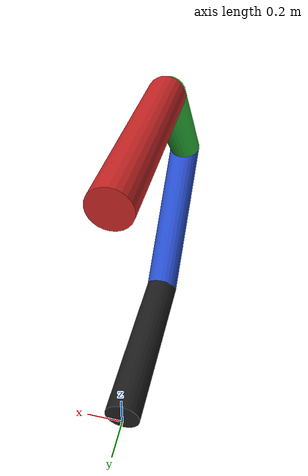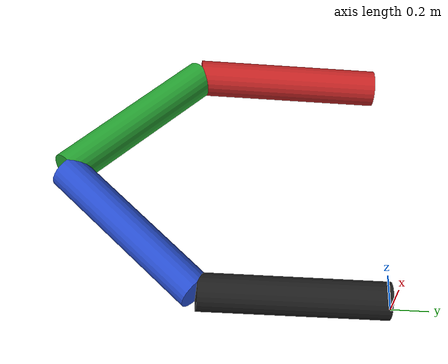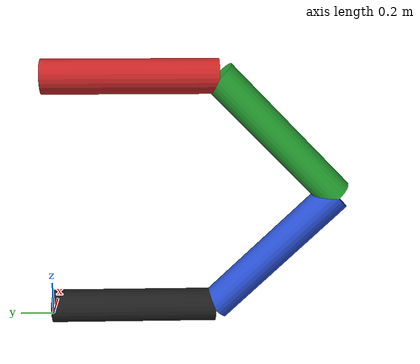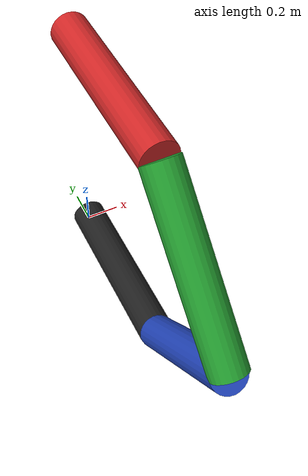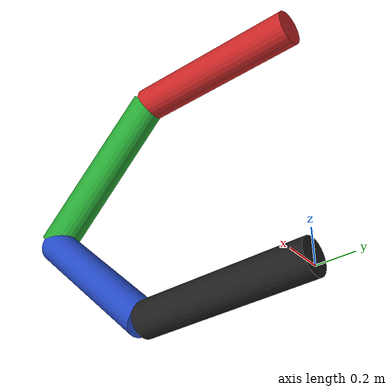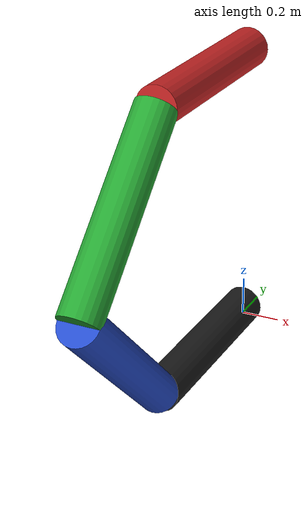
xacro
<?xml version="1.0"?>
<robot xmlns:xacro="http://www.ros.org/wiki/xacro" name="four_length">
    <xacro:property name="radiu" value="0.1"/>
    <xacro:property name="height" value="1"/>
    <xacro:property name="mass" value="1"/>

    <xacro:include filename="$(find ppr_description)/urdf/materials.xacro"/>
    <xacro:include filename="$(find ppr_description)/urdf/four_length.gazebo"/>

    <link name="world"/>

    <joint name="fixed" type="fixed">
        <parent link="world"/>
        <child link="link1"/>
        <origin xyz="0.0 0.0 ${radiu/2}" rpy="${pi/2} 0.0 0.0"/>
    </joint>

    <link name="link1">
        <collision>
            <origin xyz="0.0 0 ${height/2}" rpy="0 0.0 0.0"/>
            <geometry>
                <cylinder radius="${radiu}" length="${height}"/>
            </geometry>
        </collision>
        <visual>
            <origin xyz="0.0 0 ${height/2}" rpy="0.0 0.0 0.0"/>
            <geometry>
                <cylinder radius="${radiu}" length="${height}"/>
            </geometry>
            <material name="black"/>
        </visual>
        <inertial>
            <origin xyz="0.0 0 ${height/2}" rpy="0.0 0.0 0.0"/>
            <mass value="${mass}"/>
            <inertia
            ixx="${mass / 12.0 * (radiu*radiu + height*height)}" ixy="0.0" ixz="0.0"
            iyy="${mass / 12.0 * (radiu*radiu + height*height)}" iyz="0.0"
            izz="${mass / 12.0 * (radiu*radiu + radiu*radiu)}"/>
        </inertial>
    </link>

    <joint name="joint1" type="revolute">
        <parent link="link1"/>
        <child link="link2"/>
        <axis xyz="1 0 0"/>
        <limit lower="-3.14159" upper="3.14159" velocity="50.0" effort="1000.0"/>
        <origin xyz="0 0 ${height}" rpy="${-pi/4} 0 0"/>
    </joint>

    <link name="link2">
        <collision>
            <origin xyz="0.0 0 ${height/2}" rpy="0 0.0 0.0"/>
            <geometry>
                <cylinder radius="${radiu}" length="${height}"/>
            </geometry>
        </collision>
        <visual>
            <origin xyz="0.0 0 ${height/2}" rpy="0.0 0.0 0.0"/>
            <geometry>
                <cylinder radius="${radiu}" length="${height}"/>
            </geometry>
            <material name="blue"/>
        </visual>
        <inertial>
            <origin xyz="0.0 0 ${height/2}" rpy="0.0 0.0 0.0"/>
            <mass value="${mass}"/>
            <inertia
            ixx="${mass / 12.0 * (radiu*radiu + height*height)}" ixy="0.0" ixz="0.0"
            iyy="${mass / 12.0 * (radiu*radiu + height*height)}" iyz="0.0"
            izz="${mass / 12.0 * (radiu*radiu + radiu*radiu)}"/>
        </inertial>
    </link>

    <joint name="joint2" type="revolute">
        <parent link="link2"/>
        <child link="link3"/>
        <axis xyz="1 0 0"/>
        <limit lower="-3.14159" upper="3.14159" velocity="50.0" effort="1000.0"/>
        <origin xyz="0 0 ${height}" rpy="${-pi/2} 0 0"/>
    </joint>

    <link name="link3">
        <collision>
            <origin xyz="0.0 0 ${height/2}" rpy="0 0.0 0.0"/>
            <geometry>
                <cylinder radius="${radiu}" length="${height}"/>
            </geometry>
        </collision>
        <visual>
            <origin xyz="0.0 0 ${height/2}" rpy="0.0 0.0 0.0"/>
            <geometry>
                <cylinder radius="${radiu}" length="${height}"/>
            </geometry>
            <material name="green"/>
        </visual>
        <inertial>
            <origin xyz="0.0 0 ${height/2}" rpy="0.0 0.0 0.0"/>
            <mass value="${mass}"/>
            <inertia
            ixx="${mass / 12.0 * (radiu*radiu + height*height)}" ixy="0.0" ixz="0.0"
            iyy="${mass / 12.0 * (radiu*radiu + height*height)}" iyz="0.0"
            izz="${mass / 12.0 * (radiu*radiu + radiu*radiu)}"/>
        </inertial>
    </link>

    <joint name="joint3" type="revolute">
        <parent link="link3"/>
        <child link="link4"/>
        <axis xyz="1 0 0"/>
        <limit lower="-3.14159" upper="3.14159" velocity="50.0" effort="1000.0"/>
        <origin xyz="0 0 ${height}" rpy="${-pi/4} 0 0"/>
    </joint>

    <link name="link4">
        <collision>
            <origin xyz="0.0 0 ${height/2}" rpy="0 0.0 0.0"/>
            <geometry>
                <cylinder radius="${radiu}" length="${height}"/>
            </geometry>
        </collision>
        <visual>
            <origin xyz="0.0 0 ${height/2}" rpy="0.0 0.0 0.0"/>
            <geometry>
                <cylinder radius="${radiu}" length="${height}"/>
            </geometry>
            <material name="red"/>
        </visual>
        <inertial>
            <origin xyz="0.0 0 ${height/2}" rpy="0.0 0.0 0.0"/>
            <mass value="${mass}"/>
            <inertia
            ixx="${mass / 12.0 * (radiu*radiu + height*height)}" ixy="0.0" ixz="0.0"
            iyy="${mass / 12.0 * (radiu*radiu + height*height)}" iyz="0.0"
            izz="${mass / 12.0 * (radiu*radiu + radiu*radiu)}"/>
        </inertial>
    </link>

    <transmission name="tran1">
        <type>transmission_interface/SimpleTransmission</type>
        <joint name="joint1">
            <hardwareInterface>hardware_interface/EffortJointInterface</hardwareInterface>
        </joint>
        <actuator name="motor1">
            <hardwareInterface>hardware_interface/EffortJointInterface</hardwareInterface>
            <mechanicalReduction>1</mechanicalReduction>
        </actuator>
    </transmission>

    <transmission name="tran2">
        <type>transmission_interface/SimpleTransmission</type>
        <joint name="joint2">
            <hardwareInterface>hardware_interface/EffortJointInterface</hardwareInterface>
        </joint>
        <actuator name="motor2">
            <hardwareInterface>hardware_interface/EffortJointInterface</hardwareInterface>
            <mechanicalReduction>1</mechanicalReduction>
        </actuator>
    </transmission>

    <transmission name="tran3">
        <type>transmission_interface/SimpleTransmission</type>
        <joint name="upper_joint">
            <hardwareInterface>hardware_interface/EffortJointInterface</hardwareInterface>
        </joint>
        <actuator name="motor3">
            <hardwareInterface>hardware_interface/EffortJointInterface</hardwareInterface>
            <mechanicalReduction>1</mechanicalReduction>
        </actuator>
    </transmission>
</robot>
